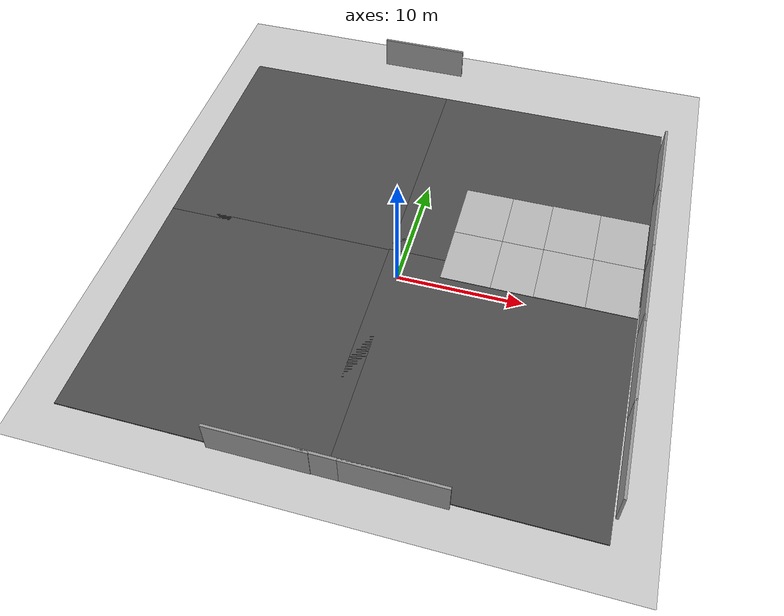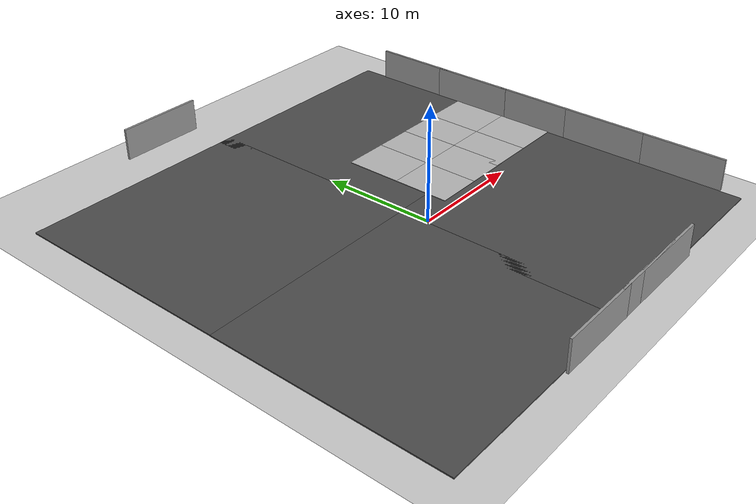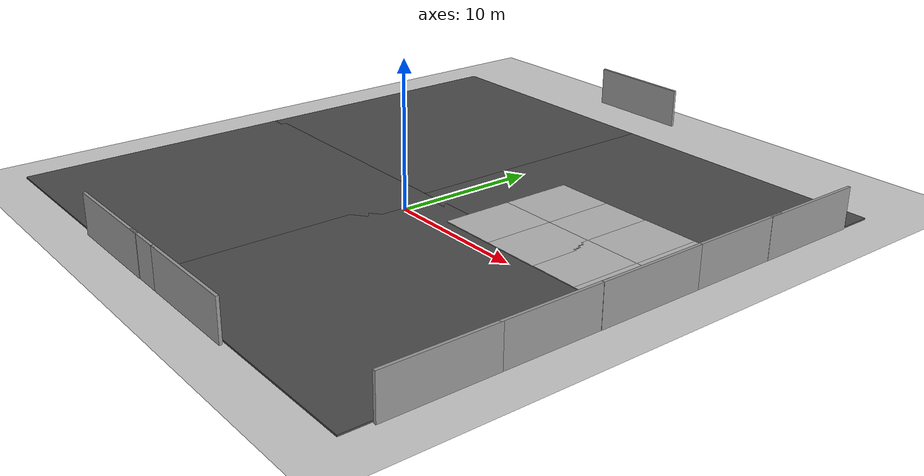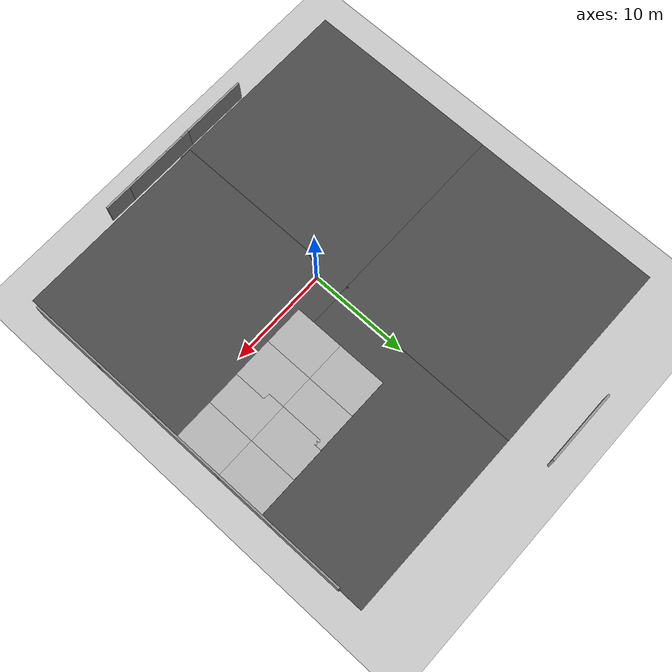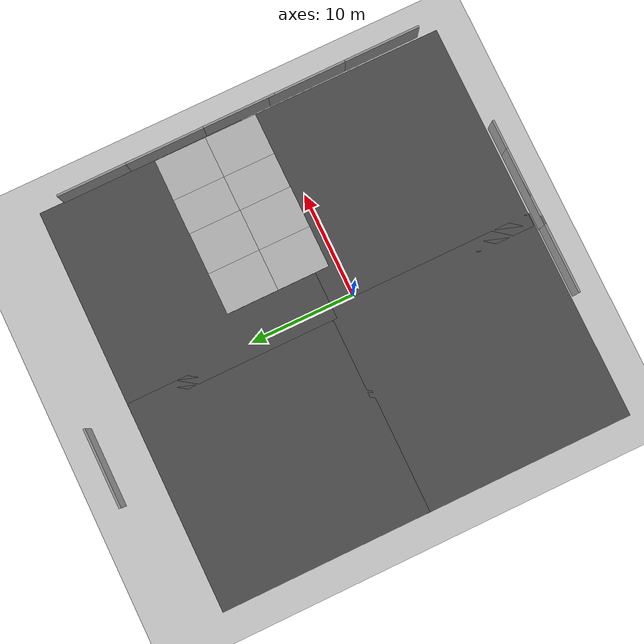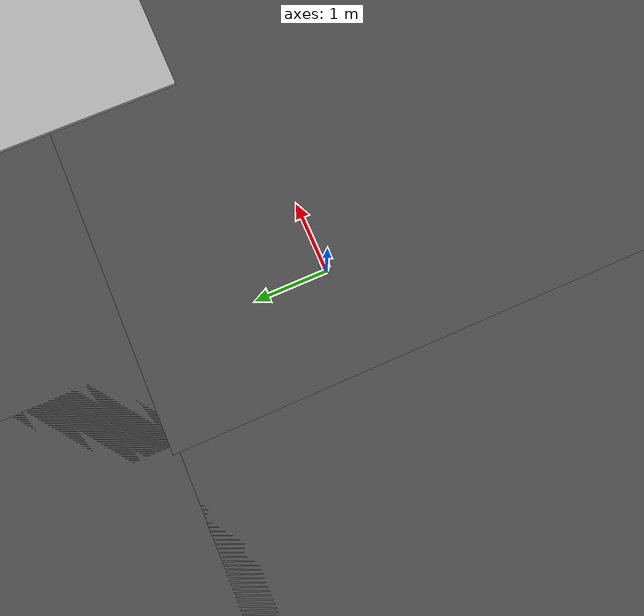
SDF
<sdf version="1.6">
 <world name="default">
  <model name="ground_plane">
   <static>1</static>
   <link name="link">
    <collision name="collision">
     <geometry><plane><normal>0 0 1</normal><size>100 100</size></plane></geometry>
     <surface><friction><ode><mu>100</mu><mu2>50</mu2></ode></friction></surface>
    </collision>
    <visual name="visual">
     <cast_shadows>0</cast_shadows>
     <geometry><plane><normal>0 0 1</normal><size>100 100</size></plane></geometry>
     <material>
      <script><uri>file://media/materials/scripts/gazebo.material</uri><name>Gazebo/Grey</name></script>
     </material>
    </visual>
   </link>
  </model>
  <model name="asphalt_plane">
   <static>1</static>
   <link name="link">
    <collision name="collision">
     <geometry><box><size>20 20 0.1</size></box></geometry>
     <surface><friction><ode><mu>100</mu><mu2>50</mu2></ode></friction></surface>
    </collision>
    <visual name="visual">
     <cast_shadows>0</cast_shadows>
     <geometry><box><size>20 20 0.1</size></box></geometry>
     <material>
      <script>
       <uri>model://asphalt_plane/materials/scripts</uri>
       <uri>model://asphalt_plane/materials/textures</uri>
       <name>vrc/asphalt</name>
      </script>
     </material>
    </visual>
   </link>
   <pose>-10.1692 -7.43707 0 0 -0 0</pose>
  </model>
  <model name="asphalt_plane_clone">
   <static>1</static>
   <link name="link">
    <collision name="collision">
     <geometry><box><size>20 20 0.1</size></box></geometry>
     <surface><friction><ode><mu>100</mu><mu2>50</mu2></ode></friction></surface>
    </collision>
    <visual name="visual">
     <cast_shadows>0</cast_shadows>
     <geometry><box><size>20 20 0.1</size></box></geometry>
     <material>
      <script>
       <uri>model://asphalt_plane/materials/scripts</uri>
       <uri>model://asphalt_plane/materials/textures</uri>
       <name>vrc/asphalt</name>
      </script>
     </material>
    </visual>
   </link>
   <pose>-10.1603 12.171 0 0 -0 0</pose>
  </model>
  <model name="asphalt_plane_clone_clone">
   <static>1</static>
   <link name="link">
    <collision name="collision">
     <geometry><box><size>20 20 0.1</size></box></geometry>
     <surface><friction><ode><mu>100</mu><mu2>50</mu2></ode></friction></surface>
    </collision>
    <visual name="visual">
     <cast_shadows>0</cast_shadows>
     <geometry><box><size>20 20 0.1</size></box></geometry>
     <material>
      <script>
       <uri>model://asphalt_plane/materials/scripts</uri>
       <uri>model://asphalt_plane/materials/textures</uri>
       <name>vrc/asphalt</name>
      </script>
     </material>
    </visual>
   </link>
   <pose>8.71597 12.1785 0 0 -0 0</pose>
  </model>
  <model name="asphalt_plane_clone_clone_0">
   <static>1</static>
   <link name="link">
    <collision name="collision">
     <geometry><box><size>20 20 0.1</size></box></geometry>
     <surface><friction><ode><mu>100</mu><mu2>50</mu2></ode></friction></surface>
    </collision>
    <visual name="visual">
     <cast_shadows>0</cast_shadows>
     <geometry><box><size>20 20 0.1</size></box></geometry>
     <material>
      <script>
       <uri>model://asphalt_plane/materials/scripts</uri>
       <uri>model://asphalt_plane/materials/textures</uri>
       <name>vrc/asphalt</name>
      </script>
     </material>
    </visual>
   </link>
   <pose>8.60996 -7.34898 0 0 -0 0</pose>
  </model>
  <model name="grey_wall">
   <static>1</static>
   <link name="link">
    <pose>0 0 1.4 0 -0 0</pose>
    <collision name="collision"><geometry><box><size>7.5 0.2 2.8</size></box></geometry></collision>
    <visual name="visual">
     <cast_shadows>0</cast_shadows>
     <geometry><box><size>7.5 0.2 2.8</size></box></geometry>
     <material>
      <script>
       <uri>model://grey_wall/materials/scripts</uri>
       <uri>model://grey_wall/materials/textures</uri>
       <name>vrc/grey_wall</name>
      </script>
     </material>
    </visual>
   </link>
   <pose>-4.8114 -17.6626 0 0 -0 0</pose>
  </model>
  <model name="grey_wall_clone">
   <static>1</static>
   <link name="link">
    <pose>0 0 1.4 0 -0 0</pose>
    <collision name="collision"><geometry><box><size>7.5 0.2 2.8</size></box></geometry></collision>
    <visual name="visual">
     <cast_shadows>0</cast_shadows>
     <geometry><box><size>7.5 0.2 2.8</size></box></geometry>
     <material>
      <script>
       <uri>model://grey_wall/materials/scripts</uri>
       <uri>model://grey_wall/materials/textures</uri>
       <name>vrc/grey_wall</name>
      </script>
     </material>
    </visual>
   </link>
   <pose>1.84642 -17.6367 0 0 -0 0</pose>
  </model>
  <model name="grey_wall_clone_0">
   <static>1</static>
   <link name="link">
    <pose>0 0 1.4 0 -0 0</pose>
    <collision name="collision"><geometry><box><size>7.5 0.2 2.8</size></box></geometry></collision>
    <visual name="visual">
     <cast_shadows>0</cast_shadows>
     <geometry><box><size>7.5 0.2 2.8</size></box></geometry>
     <material>
      <script>
       <uri>model://grey_wall/materials/scripts</uri>
       <uri>model://grey_wall/materials/textures</uri>
       <name>vrc/grey_wall</name>
      </script>
     </material>
    </visual>
   </link>
   <pose>4.62088 -17.6372 0 0 -0 0</pose>
  </model>
  <model name="grey_wall_clone_clone">
   <static>1</static>
   <link name="link">
    <pose>0 0 1.4 0 -0 0</pose>
    <collision name="collision"><geometry><box><size>7.5 0.2 2.8</size></box></geometry></collision>
    <visual name="visual">
     <cast_shadows>0</cast_shadows>
     <geometry><box><size>7.5 0.2 2.8</size></box></geometry>
     <material>
      <script>
       <uri>model://grey_wall/materials/scripts</uri>
       <uri>model://grey_wall/materials/textures</uri>
       <name>vrc/grey_wall</name>
      </script>
     </material>
    </visual>
   </link>
   <pose>-4.48764 26.0166 0 0 -0 0</pose>
  </model>
  <model name="grey_wall_clone_clone_clone">
   <static>1</static>
   <link name="link">
    <pose>0 0 1.4 0 -0 0</pose>
    <collision name="collision"><geometry><box><size>7.5 0.2 2.8</size></box></geometry></collision>
    <visual name="visual">
     <cast_shadows>0</cast_shadows>
     <geometry><box><size>7.5 0.2 2.8</size></box></geometry>
     <material>
      <script>
       <uri>model://grey_wall/materials/scripts</uri>
       <uri>model://grey_wall/materials/textures</uri>
       <name>vrc/grey_wall</name>
      </script>
     </material>
    </visual>
   </link>
   <pose>18.7544 16.0387 0 0 0 -1.56734</pose>
  </model>
  <model name="grey_wall_clone_clone_clone_clone">
   <static>1</static>
   <link name="link">
    <pose>0 0 1.4 0 -0 0</pose>
    <collision name="collision"><geometry><box><size>7.5 0.2 2.8</size></box></geometry></collision>
    <visual name="visual">
     <cast_shadows>0</cast_shadows>
     <geometry><box><size>7.5 0.2 2.8</size></box></geometry>
     <material>
      <script>
       <uri>model://grey_wall/materials/scripts</uri>
       <uri>model://grey_wall/materials/textures</uri>
       <name>vrc/grey_wall</name>
      </script>
     </material>
    </visual>
   </link>
   <pose>18.767 9.41754 0 0 0 -1.56734</pose>
  </model>
  <model name="grey_wall_clone_clone_clone_clone_0">
   <static>1</static>
   <link name="link">
    <pose>0 0 1.4 0 -0 0</pose>
    <collision name="collision"><geometry><box><size>7.5 0.2 2.8</size></box></geometry></collision>
    <visual name="visual">
     <cast_shadows>0</cast_shadows>
     <geometry><box><size>7.5 0.2 2.8</size></box></geometry>
     <material>
      <script>
       <uri>model://grey_wall/materials/scripts</uri>
       <uri>model://grey_wall/materials/textures</uri>
       <name>vrc/grey_wall</name>
      </script>
     </material>
    </visual>
   </link>
   <pose>18.7963 2.45369 0 0 0 -1.56734</pose>
  </model>
  <model name="grey_wall_clone_clone_clone_clone_1">
   <static>1</static>
   <link name="link">
    <pose>0 0 1.4 0 -0 0</pose>
    <collision name="collision"><geometry><box><size>7.5 0.2 2.8</size></box></geometry></collision>
    <visual name="visual">
     <cast_shadows>0</cast_shadows>
     <geometry><box><size>7.5 0.2 2.8</size></box></geometry>
     <material>
      <script>
       <uri>model://grey_wall/materials/scripts</uri>
       <uri>model://grey_wall/materials/textures</uri>
       <name>vrc/grey_wall</name>
      </script>
     </material>
    </visual>
   </link>
   <pose>18.8058 -4.41342 0 0 0 -1.56734</pose>
  </model>
  <model name="grey_wall_clone_clone_clone_clone_2">
   <static>1</static>
   <link name="link">
    <pose>0 0 1.4 0 -0 0</pose>
    <collision name="collision"><geometry><box><size>7.5 0.2 2.8</size></box></geometry></collision>
    <visual name="visual">
     <cast_shadows>0</cast_shadows>
     <geometry><box><size>7.5 0.2 2.8</size></box></geometry>
     <material>
      <script>
       <uri>model://grey_wall/materials/scripts</uri>
       <uri>model://grey_wall/materials/textures</uri>
       <name>vrc/grey_wall</name>
      </script>
     </material>
    </visual>
   </link>
   <pose>18.8343 -11.7301 0 0 0 -1.56734</pose>
  </model>
  <model name="mud_box">
   <static>1</static>
   <link name="link">
    <collision name="collision"><geometry><box><size>8 10 0.2</size></box></geometry></collision>
    <visual name="visual_1">
     <pose>-2 2.5 0 0 -0 0</pose>
     <cast_shadows>0</cast_shadows>
     <geometry><box><size>4 5 0.2</size></box></geometry>
     <material>
      <script>
       <uri>model://mud_box/materials/scripts</uri>
       <uri>model://mud_box/materials/textures</uri>
       <name>vrc/mud</name>
      </script>
     </material>
    </visual>
    <visual name="visual_2">
     <pose>2 2.5 0 0 -0 0</pose>
     <cast_shadows>0</cast_shadows>
     <geometry><box><size>4 5 0.2</size></box></geometry>
     <material>
      <script>
       <uri>model://mud_box/materials/scripts</uri>
       <uri>model://mud_box/materials/textures</uri>
       <name>vrc/mud</name>
      </script>
     </material>
    </visual>
    <visual name="visual_3">
     <pose>2 -2.5 0 0 -0 0</pose>
     <cast_shadows>0</cast_shadows>
     <geometry><box><size>4 5 0.2</size></box></geometry>
     <material>
      <script>
       <uri>model://mud_box/materials/scripts</uri>
       <uri>model://mud_box/materials/textures</uri>
       <name>vrc/mud</name>
      </script>
     </material>
    </visual>
    <visual name="visual_4">
     <pose>-2 -2.5 0 0 -0 0</pose>
     <cast_shadows>0</cast_shadows>
     <geometry><box><size>4 5 0.2</size></box></geometry>
     <material>
      <script>
       <uri>model://mud_box/materials/scripts</uri>
       <uri>model://mud_box/materials/textures</uri>
       <name>vrc/mud</name>
      </script>
     </material>
    </visual>
   </link>
   <pose>14.6137 5.86275 0 0 -0 0</pose>
  </model>
  <model name="mud_box_clone">
   <static>1</static>
   <link name="link">
    <collision name="collision"><geometry><box><size>8 10 0.2</size></box></geometry></collision>
    <visual name="visual_1">
     <pose>-2 2.5 0 0 -0 0</pose>
     <cast_shadows>0</cast_shadows>
     <geometry><box><size>4 5 0.2</size></box></geometry>
     <material>
      <script>
       <uri>model://mud_box/materials/scripts</uri>
       <uri>model://mud_box/materials/textures</uri>
       <name>vrc/mud</name>
      </script>
     </material>
    </visual>
    <visual name="visual_2">
     <pose>2 2.5 0 0 -0 0</pose>
     <cast_shadows>0</cast_shadows>
     <geometry><box><size>4 5 0.2</size></box></geometry>
     <material>
      <script>
       <uri>model://mud_box/materials/scripts</uri>
       <uri>model://mud_box/materials/textures</uri>
       <name>vrc/mud</name>
      </script>
     </material>
    </visual>
    <visual name="visual_3">
     <pose>2 -2.5 0 0 -0 0</pose>
     <cast_shadows>0</cast_shadows>
     <geometry><box><size>4 5 0.2</size></box></geometry>
     <material>
      <script>
       <uri>model://mud_box/materials/scripts</uri>
       <uri>model://mud_box/materials/textures</uri>
       <name>vrc/mud</name>
      </script>
     </material>
    </visual>
    <visual name="visual_4">
     <pose>-2 -2.5 0 0 -0 0</pose>
     <cast_shadows>0</cast_shadows>
     <geometry><box><size>4 5 0.2</size></box></geometry>
     <material>
      <script>
       <uri>model://mud_box/materials/scripts</uri>
       <uri>model://mud_box/materials/textures</uri>
       <name>vrc/mud</name>
      </script>
     </material>
    </visual>
   </link>
   <pose>7.23773 5.83307 0 0 -0 0</pose>
  </model>
  <light name="sun" type="directional">
   <pose>0 0 10 0 -0 0</pose>
   <diffuse>0.8 0.8 0.8 1</diffuse>
   <specular>0.2 0.2 0.2 1</specular>
   <attenuation>
    <range>1000</range>
    <constant>0.9</constant>
    <linear>0.01</linear>
    <quadratic>0.001</quadratic>
   </attenuation>
   <direction>-0.5 0.1 -0.9</direction>
  </light>
  <gravity>0 0 -9.8</gravity>
  <magnetic_field>6e-06 2.3e-05 -4.2e-05</magnetic_field>
  <atmosphere type="adiabatic"/>
  <physics name="default_physics" default="0" type="ode">
   <max_step_size>0.001</max_step_size>
   <real_time_factor>1</real_time_factor>
   <real_time_update_rate>1000</real_time_update_rate>
  </physics>
  <scene><ambient>0.4 0.4 0.4 1</ambient><background>0.7 0.7 0.7 1</background><shadows>1</shadows></scene>
  <audio><device>default</device></audio>
  <spherical_coordinates>
   <surface_model>EARTH_WGS84</surface_model>
   <latitude_deg>47.840640</latitude_deg>
   <longitude_deg>10.619944</longitude_deg>
   <elevation>740.0</elevation>
   <heading_deg>180</heading_deg>
  </spherical_coordinates>
  <include><uri>model://two_wheeled_robot_description</uri></include>
 </world>
</sdf>

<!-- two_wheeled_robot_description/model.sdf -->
<sdf version="1.5">
  <model name="two_wheeled_robot">
  <static>false</static>

  <!-- ****************** ROBOT BASE FOOTPRINT ***************************  -->
  <pose>0.0 0.0 0.0 0.0 0.0 0.0</pose>
  <link name="base_footprint"/>

  <!-- ********************** ROBOT BASE *********************************  -->
  <link name="base_link">

    <collision name="base_collision">
      <pose>0 0 0.1 0 0 0</pose>
      <geometry>
        <box>
          <size>0.30 0.34 0.02</size>
        </box>
      </geometry>

    </collision>

    <visual name="base_visual">
      <pose>0 0 -0.05 0 0 0</pose>
      <geometry>
        <box>
          <size>0.30 0.34 0.02</size>
        </box>
      </geometry>
      <material>
        <ambient>1.0 0.0 0.0 1.0</ambient>
        <diffuse>1.0 0.0 0.0 1.0</diffuse>
        <specular>0.0 0.0 0.0 1.0</specular>
        <emissive>0.0 0.0 0.0 1.0</emissive>
      </material>
    </visual>
     <inertial>
     		 <ixx>0.004878</ixx>
				  <ixy>0</ixy>
				  <ixz>0</ixz>
				  <iyy>0.00090164</iyy>
				  <iyz>-0.00014394</iyz>
				  <izz>0.0042946</izz>
      	<mass>10</mass>
      </inertial>
  </link>

  <link name="left_front_lower_pillar">
  	<visual name="visual">
      <pose>0.14 .16 -0.01 0 0 0</pose>
      <geometry>
        <box>
          <size>0.02 0.02 0.06</size>
        </box>
      </geometry>
     </visual>
  </link>

  <link name="right_front_lower_pillar">
  	<visual name="visual">
      <pose>0.14 -0.16 -0.01 0 0 0</pose>
      <geometry>
        <box>
          <size>0.02 0.02 0.06</size>
        </box>
      </geometry>
     </visual>
  </link>

  <link name="right_rear_lower_pillar">
  	<visual name="visual">
      <pose>-0.14 -0.16 -0.01 0 0 0</pose>
      <geometry>
        <box>
          <size>0.02 0.02 0.06</size>
        </box>
      </geometry>
     </visual>
  </link>
  <link name="left_rear_lower_pillar">
  	<visual name="visual">
      <pose>-0.14 0.16 -0.01 0 0 0</pose>
      <geometry>
        <box>
          <size>0.02 0.02 0.06</size>
        </box>
      </geometry>
     </visual>
  </link>
  <link name="mid_platform">
			<visual name="mid_visual">
		    <pose>0 0 0.03 1.5707963267949 0 3.141592654</pose>
		    <geometry>
		      <box>
		        <size>0.30 0.02 0.34</size>
		      </box>
		    </geometry>
		  </visual>
		  <collision name="collision">
		    <pose>0 0 0.03 1.5707963267949 0 3.141592654</pose>
		    <geometry>
		      <box>
		        <size>0.30 0.02 0.34</size>
		      </box>
		    </geometry>
		  </collision>
		  <inertial>
     		 <ixx>0.004878</ixx>
				  <ixy>0</ixy>
				  <ixz>0</ixz>
				  <iyy>0.00090164</iyy>
				  <iyz>-0.00014394</iyz>
				  <izz>0.0042946</izz>
      	<mass>10</mass>
      </inertial>
   </link>
   <link name="sensor_tower">
			<visual name="visual">
		    <pose>0.06 0 0.08 0 0 0</pose>
		    <geometry>
		      <box>
		        <size>0.14 0.14 0.1</size>
		      </box>
		    </geometry>
		  </visual>
		  <collision name="collision">
		    <pose>0.06 0 0.08 0 0 0</pose>
		    <geometry>
		      <box>
		        <size>0.14 0.14 0.1</size>
		      </box>
		    </geometry>
		  </collision>
		  <inertial>
     		  <ixx>0.004878</ixx>
				  <ixy>0</ixy>
				  <ixz>0</ixz>
				  <iyy>0.00090164</iyy>
				  <iyz>-0.00014394</iyz>
				  <izz>0.000006</izz>
      	<mass>1</mass>
      </inertial>
   </link>
  <!-- *********************** CAMERA ********************************** -->
  <link name="camera_link">

 		<visual name="camera_visual">
 			<pose>0.15 0 0.12 0 0 0</pose>
      <geometry>
    		<box>
    			<size>0.02 0.04 0.02</size>
    		</box>
      </geometry>
    </visual>
		<collision name="camera_collision">
		  <pose>0.15 0 0.12 0 0 0</pose>
		  <geometry>
    		<box>
    			<size>0.02 0.04 0.02</size>
    		</box>
      </geometry>
		</collision>
    <sensor name='camera1' type='camera'>
    	<pose>0.15 0 0.12 0 0 0</pose>
				<camera name="head">
					<horizontal_fov>1.3962634</horizontal_fov>
					<image>
					  <width>640</width>
					  <height>480</height>
					  <format>R8G8B8</format>
					</image>
					<clip>
					  <near>0.1</near>
					  <far>300</far>
					</clip>
				</camera>
				<update_rate>30</update_rate>
				<visualize>1</visualize>
				<plugin name="camera_controller" filename="libgazebo_ros_camera.so">
					<always_on>true</always_on>
					<camera_name>main_camera</camera_name>
					<imageTopicName>image_raw</imageTopicName>
					<cameraInfoTopicName>camera_info</cameraInfoTopicName>
					<frame_name>camera_link</frame_name>
			</plugin>
		</sensor>
  </link>

  <!-- *********************** IMU SENSOR SETUP **************************  -->
  <link name="imu_link">
    <gravity>true</gravity>
    <sensor name="bmb_imu" type="imu">
      <always_on>true</always_on>
      <update_rate>100</update_rate>
      <visualize>true</visualize>
      <imu>
        <orientation>
          <x>
            <noise type="gaussian">
              <mean>0.0</mean>
              <stddev>2e-3</stddev>
            </noise>
          </x>
          <y>
            <noise type="gaussian">
              <mean>0.0</mean>
              <stddev>2e-3</stddev>
            </noise>
          </y>
          <z>
            <noise type="gaussian">
              <mean>0.0</mean>
              <stddev>2e-3</stddev>
            </noise>
          </z>
        </orientation>
        <angular_velocity>
          <x>
            <noise type="gaussian">
              <mean>0.0</mean>
              <stddev>2e-4</stddev>
            </noise>
          </x>
          <y>
            <noise type="gaussian">
              <mean>0.0</mean>
              <stddev>2e-4</stddev>
            </noise>
          </y>
          <z>
            <noise type="gaussian">
              <mean>0.0</mean>
              <stddev>2e-4</stddev>
            </noise>
          </z>
        </angular_velocity>
        <linear_acceleration>
          <x>
            <noise type="gaussian">
              <mean>0.0</mean>
              <stddev>1.7e-2</stddev>
            </noise>
          </x>
          <y>
            <noise type="gaussian">
              <mean>0.0</mean>
              <stddev>1.7e-2</stddev>
            </noise>
          </y>
          <z>
            <noise type="gaussian">
              <mean>0.0</mean>
              <stddev>1.7e-2</stddev>
            </noise>
          </z>
        </linear_acceleration>
      </imu>
      <plugin name="basic_mobile_bot_imu" filename="libgazebo_ros_imu_sensor.so">
        <initial_orientation_as_reference>false</initial_orientation_as_reference>
        <frame_name>imu_link</frame_name>
        <ros>
          <namespace>/imu</namespace>
          <remapping>~/out:=data</remapping>
        </ros>
      </plugin>
    </sensor>
  </link>

  <!-- *********************** GPS SETUP *********************************  -->
  <link name="gps_link">
    <sensor name="bmb_gps" type="gps">
      <always_on>true</always_on>
      <update_rate>10.0</update_rate>
      <gps>
        <position_sensing>
          <horizontal>
            <noise type="gaussian">
              <mean>0.0</mean>
              <stddev>1e-2</stddev>
            </noise>
          </horizontal>
          <vertical>
            <noise type="gaussian">
              <mean>0.0</mean>
              <stddev>1</stddev>
            </noise>
          </vertical>
        </position_sensing>
      </gps>
      <plugin name="basic_mobile_bot_gps" filename="libgazebo_ros_gps_sensor.so">
        <ros>
          <remapping>~/out:=gps/fix</remapping>
        </ros>
      </plugin>
    </sensor>
  </link>

  <!-- *********************** DRIVE WHEELS ******************************  -->
  <link name="drivewhl_l_link">
    <pose>0.10 0.2 -0.07 0 1.570796 1.570796</pose>

    <collision name="drivewhl_l_collision">
      <geometry>
        <cylinder>
          <radius>0.045</radius>
          <length>0.015</length>
        </cylinder>
      </geometry>
    </collision>

    <visual name="drivewhl_l_visual">
      <geometry>
        <cylinder>
          <radius>0.045</radius>
          <length>0.015</length>
        </cylinder>
      </geometry>
    </visual>
  </link>

  <link name="drivewhl_r_link">
    <pose>0.10 -0.2 -0.07 0 1.570796 1.570796</pose>

    <collision name="drivewhl_r_collision">
      <geometry>
        <cylinder>
          <radius>0.045</radius>
          <length>0.015</length>
        </cylinder>
      </geometry>
    </collision>

    <visual name="drivewhl_r_visual">
      <geometry>
        <cylinder>
          <radius>0.045</radius>
          <length>0.015</length>
        </cylinder>
      </geometry>
    </visual>
  </link>

  <!-- *********************** CASTER WHEELS ******************************  -->

  <link name='rear_caster_l'>
    <pose>-0.135 0.16 -0.08 0 0 0</pose>
    <collision name='collision'>
      <geometry>
            <sphere>
                <radius>0.035</radius>
            </sphere>
        </geometry>
      <surface>
            <friction>
                <ode>
                    <mu>0.000008</mu>
                    <mu2>0.000008</mu2>
                    <slip1>0.0</slip1>
                    <slip2>0.0</slip2>
                </ode>
            </friction>
        </surface>
    </collision>
    <visual name="rear_caster_visual_r">
      <geometry>
            <sphere>
                <radius>0.035</radius>
            </sphere>
        </geometry>
    </visual>
    <inertial>
          <origin xyz="0 0 0" rpy="0 0 0"/>
          <mass value="0.25"/>
          <inertia ixx="0.1" ixy="0.0" ixz="0.0" iyy="0.1"  iyz="0.0" izz="0.1"/>
      </inertial>
  </link>

  <link name='rear_caster_r'>
    <pose>-0.135 -0.16 -0.08 0 0 0</pose>
    <collision name='collision'>
      <geometry>
            <sphere>
                <radius>0.035</radius>
            </sphere>
        </geometry>
      	<surface>
            <friction>
                <ode>
                    <mu>0.000008</mu>
                    <mu2>0.000008</mu2>
                    <slip1>0.0</slip1>
                    <slip2>0.0</slip2>
                </ode>
            </friction>
        </surface>
    </collision>
    <visual name="rear_caster_visual_r">
      <geometry>
            <sphere>
                <radius>0.035</radius>
            </sphere>
        </geometry>
    </visual>
  </link>

  <!-- ****************************** LIDAR *****************************    -->
	<link name="lidar_link">
		<inertial>
		  <pose>0.06 0 0.15 0 0 0</pose>
		  <inertia>
		    <ixx>0.001</ixx>
		    <ixy>0.000</ixy>
		    <ixz>0.000</ixz>
		    <iyy>0.001</iyy>
		    <iyz>0.000</iyz>
		    <izz>0.001</izz>
		  </inertia>
		  <mass>0.114</mass>
		</inertial>

		<collision name="lidar_collision">
		  <pose>0.06 0 0.15 0 0 0</pose>
		  <geometry>
		    <cylinder>
		      <radius>0.02</radius>
		      <length>0.04</length>
		    </cylinder>
		  </geometry>
		</collision>

		<visual name="lidar_visual">
		  <pose>0.06 0 0.15 0 0 0</pose>
		  <geometry>
		    <cylinder>
		      <radius>0.02</radius>
		      <length>0.04</length>
		    </cylinder>
		  </geometry>
		  <material>
		    <ambient>0.0 0.0 0.0 1.0</ambient>
		    <diffuse>0.0 0.0 0.0 1.0</diffuse>
		    <specular>0.0 0.0 0.0 1.0</specular>
		    <emissive>0.0 0.0 0.0 1.0</emissive>
		  </material>
		</visual>

		<sensor name="lidar" type="ray">
		  <pose>0.06 0 0.18 0 0 0</pose>
		  <always_on>true</always_on>
		  <visualize>true</visualize>
		  <update_rate>5</update_rate>
		  <ray>
		    <scan>
		      <horizontal>
		        <samples>180</samples>
		        <resolution>1.00000</resolution>
		        <min_angle>0.000000</min_angle>
		        <max_angle>6.280000</max_angle>
		      </horizontal>
		    </scan>
		    <range>
		      <min>0.120000</min>
		      <max>10.0</max>
		      <resolution>0.015000</resolution>
		    </range>
		    <noise>
		      <type>gaussian</type>
		      <mean>0.0</mean>
		      <stddev>0.01</stddev>
		    </noise>
		  </ray>
		  <plugin name="scan" filename="libgazebo_ros_ray_sensor.so">
		    <ros>
		      <remapping>~/out:=scan</remapping>
		    </ros>
		    <output_type>sensor_msgs/LaserScan</output_type>
		    <frame_name>lidar_link</frame_name>
		  </plugin>
		</sensor>
	</link>

  <!-- ************************ JOINTS ***********************************  -->
  <!-- Pose of the joint is the same as the child link frame -->
  <!-- Axis is the axis of rotation relative to the child link frame -->

  <joint name="base_joint" type="fixed">
    <parent>base_footprint</parent>
    <child>base_link</child>
    <pose>0 0 0 0 0 0</pose>
  </joint>

  <joint name="mid_platform_joint" type="fixed">
    <parent>base_link</parent>
    <child>mid_platform</child>
  </joint>
  <joint name="sensor_tower" type="fixed">
    <parent>base_link</parent>
    <child>sensor_tower</child>
  </joint>
  <joint name="r_front_piller" type="fixed">
  	<parent>base_link</parent>
  	<child>right_front_lower_pillar</child>
 	</joint>
 	<joint name="l_front_piller" type="fixed">
  	<parent>base_link</parent>
  	<child>left_front_lower_pillar</child>
 	</joint>

 	<joint name="r_rear_piller" type="fixed">
  	<parent>base_link</parent>
  	<child>right_rear_lower_pillar</child>
 	</joint>
 	<joint name="l_rear_piller" type="fixed">
  	<parent>base_link</parent>
  	<child>left_rear_lower_pillar</child>
 	</joint>

  <joint name="drivewhl_l_joint" type="revolute">
    <parent>base_link</parent>
    <child>drivewhl_l_link</child>
    <pose>0 0 0 0 0 0</pose>
    <axis>
      <xyz>0 0 1</xyz>
    </axis>
  </joint>

  <joint name="drivewhl_r_joint" type="revolute">
    <parent>base_link</parent>
    <child>drivewhl_r_link</child>
    <pose>0 0 0 0 0 0</pose>
    <axis>
      <xyz>0 0 1</xyz>
    </axis>
  </joint>

  <joint name='caster_joint_l' type='ball'>
    <parent>base_link</parent>
    <child>rear_caster_l</child>
  </joint>

  <joint name='caster_joint_r' type='ball'>
    <parent>base_link</parent>
    <child>rear_caster_r</child>
  </joint>

	<joint name="camera_joint" type="fixed">
    <parent>base_link</parent>
    <child>camera_link</child>
    <pose>0 0 0 0 0 0</pose>
  </joint>

  <joint name="lidar_joint" type="fixed">
    <parent>base_link</parent>
    <child>lidar_link</child>
    <pose>0 0 0 0 0 0</pose>
  </joint>

  <joint name="imu_joint" type="fixed">
    <parent>base_link</parent>
    <child>imu_link</child>
    <pose>0 0 0 0 0 0</pose>
  </joint>

  <joint name="gps_joint" type="fixed">
    <parent>base_link</parent>
    <child>gps_link</child>
    <pose>0 0 0 0 0 0</pose>
  </joint>

 <!-- *********************** WHEEL ODOMETRY ***************************    -->
  <plugin name="basic_mobile_bot_diff_drive" filename="libgazebo_ros_diff_drive.so">

    <update_rate>30</update_rate>

    <!-- wheels -->
    <left_joint>drivewhl_l_joint</left_joint>
    <right_joint>drivewhl_r_joint</right_joint>

    <!-- kinematics -->
    <wheel_separation>0.52</wheel_separation>
    <wheel_diameter>0.28</wheel_diameter>

    <!-- limits -->
    <max_wheel_torque>20</max_wheel_torque>
    <max_wheel_acceleration>1.0</max_wheel_acceleration>

    <!-- Receive velocity commands on this ROS topic -->
    <command_topic>cmd_vel</command_topic>

    <!-- output -->
    <!-- When false, publish no wheel odometry data to a ROS topic -->
    <publish_odom>true</publish_odom>

    <!-- When true, publish coordinate transform from odom to base_footprint -->
    <!-- I usually use the robot_localization package to publish this transform -->
    <publish_odom_tf>false</publish_odom_tf>

    <!-- When true, publish coordinate transform from base_link to the wheels -->
    <!-- The robot_state_publisher package is often used to publish this transform -->
    <publish_wheel_tf>false</publish_wheel_tf>

    <odometry_topic>odom</odometry_topic>
    <odometry_frame>odom</odometry_frame>
    <robot_base_frame>base_footprint</robot_base_frame>

    <!-- Odometry source, 0 for ENCODER, 1 for WORLD, defaults to WORLD -->
		<odometry_source>1</odometry_source>
    <!-- Change the ROS topic we will publish the odometry data to -->
    <ros>
      <remapping>odom:=wheel/odometry</remapping>
    </ros>

  </plugin>

 <!-- *********************** JOINT STATE PUBLISHER *********************   -->

  <plugin name="basic_mobile_bot_joint_state" filename="libgazebo_ros_joint_state_publisher.so">
    <ros>
      <remapping>~/out:=joint_states</remapping>
    </ros>
    <update_rate>30</update_rate>
    <joint_name>drivewhl_l_joint</joint_name>
    <joint_name>drivewhl_r_joint</joint_name>
  </plugin>

  </model>
</sdf>
